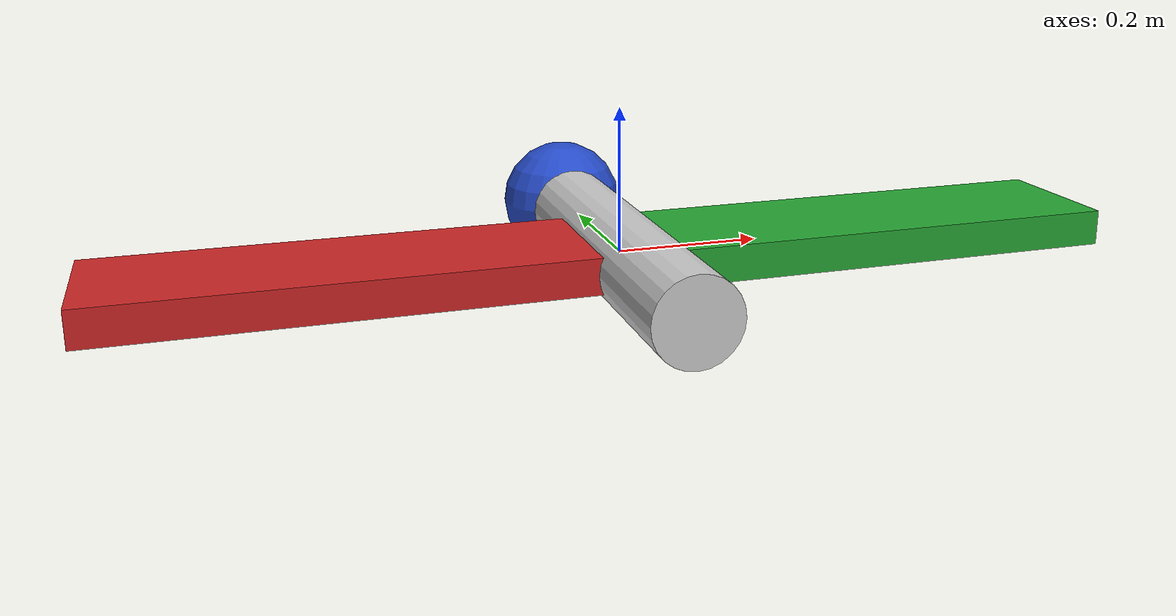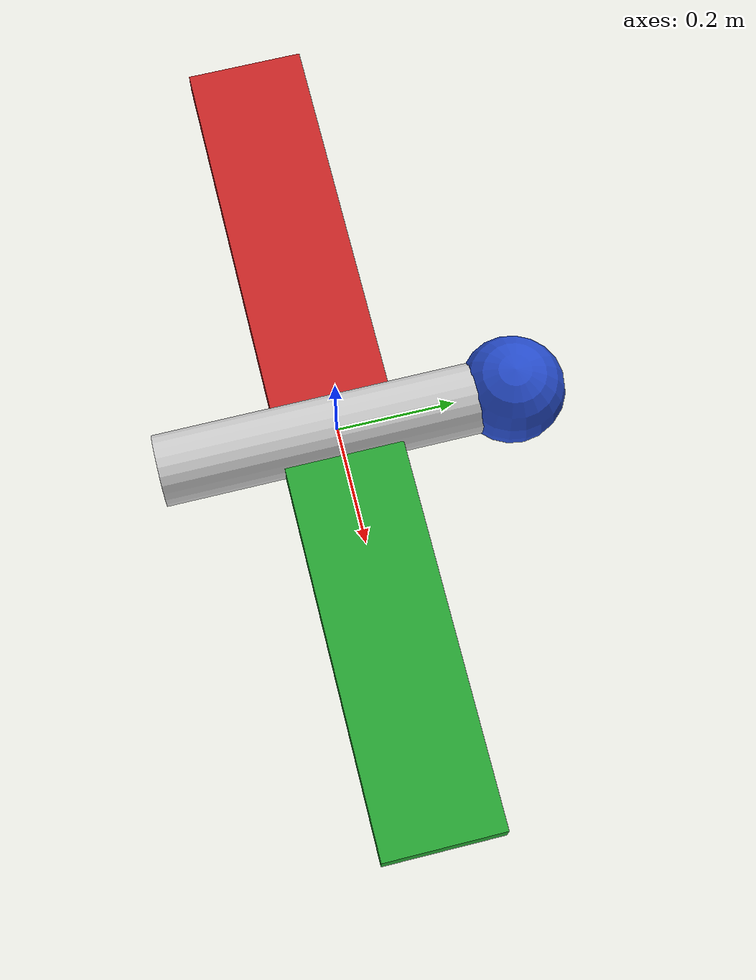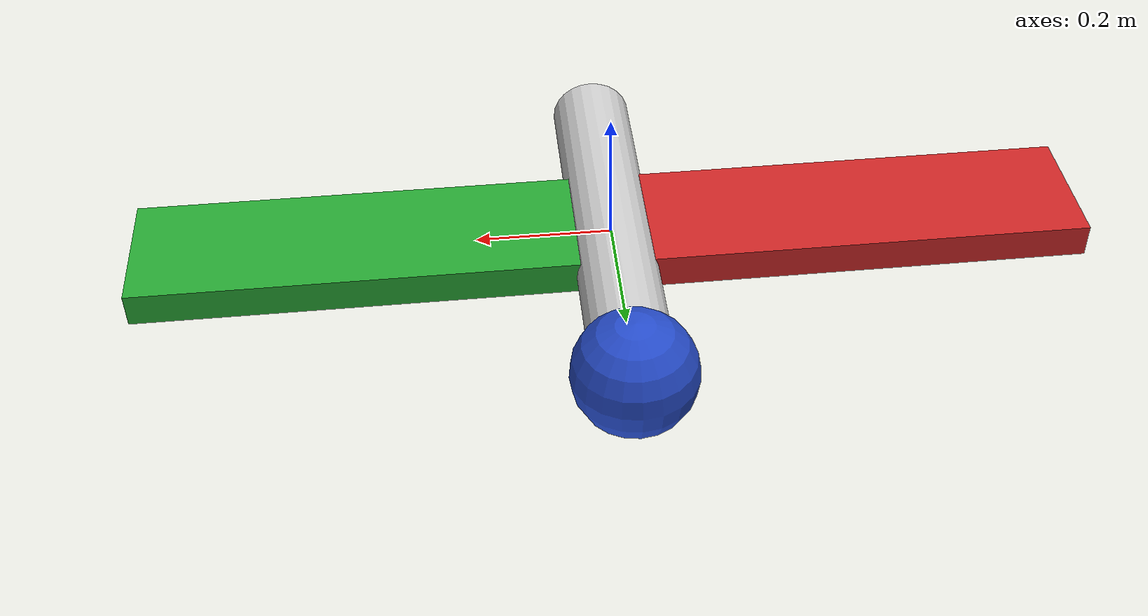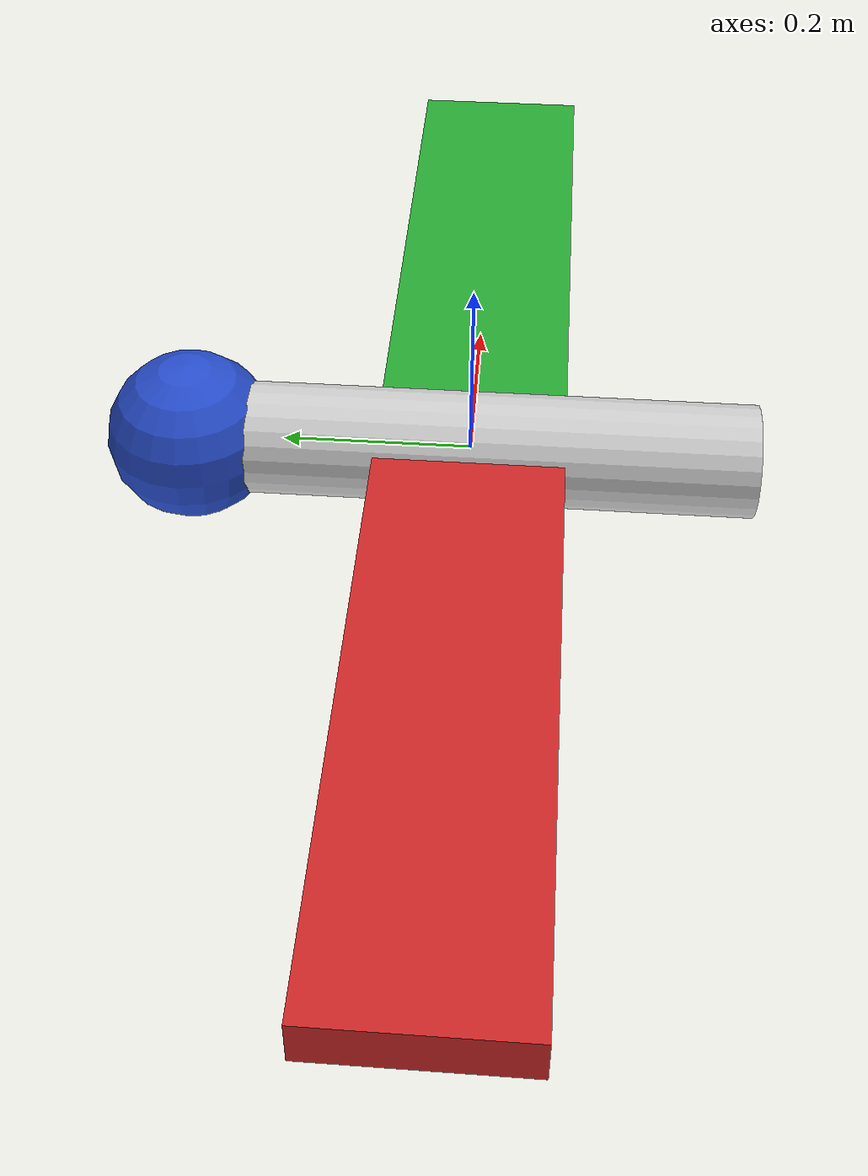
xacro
<?xml version="1.0" encoding="UTF-8"?>
<robot xmlns:xacro="http://wiki.ros.org/xacro" name="metafly">

  <!-- Use this if parameters are set from the launch file, otherwise delete -->
  <xacro:arg name="prefix" default="" />

  <xacro:include filename="$(find metafly_description)/urdf/materials.xacro" />
  <xacro:include filename="$(find metafly_description)/urdf/metafly_macro.xacro" />

  <!-- Load robot's macro with parameters -->
  <!-- set prefix if multiple robots are used -->
  <xacro:metafly prefix="$(arg prefix)"/>

</robot>

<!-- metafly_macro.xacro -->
<robot xmlns:xacro="http://wiki.ros.org/xacro">

  <xacro:macro name="metafly" params="prefix">

    <!-- Make everything larger and easier to see -->
    <xacro:property name="body_length" value="0.6" />
    <xacro:property name="body_radius" value="0.06" />
    <xacro:property name="wing_length" value="0.5" />
    <xacro:property name="wing_width" value="0.25" />
    <xacro:property name="wing_thickness" value="0.05" />

    <!-- Base/body -->
    <link name="${prefix}base_link">
      <visual>
        <origin xyz="0 0 0" rpy="${radians(90)} 0 0" />
        <geometry>
          <cylinder length="${body_length}" radius="${body_radius}" />
        </geometry>
        <material name="light_grey"/>
      </visual>

      <visual>
        <origin xyz="0 ${body_length/2} 0" rpy="0 0 0" />
        <geometry>
          <sphere radius="0.09"/>
        </geometry>
        <material name="blue"/>
      </visual>
    </link>

    <!-- Left wing -->
    <link name="${prefix}wing1">
      <visual>
        <origin xyz="-0.35 0 0" rpy="0 0 0" />
        <geometry>
          <box size="0.7 0.2 0.05" />
        </geometry>
        <material name="red"/>
      </visual>
    </link>

    <!-- Right wing -->
    <link name="${prefix}wing2">
      <visual>
        <origin xyz="0.35 0 0" rpy="0 0 0" />
        <geometry>
          <box size="0.7 0.2 0.05" />
        </geometry>
        <material name="green"/>
      </visual>
    </link>

    <!-- Joints -->
    <joint name="${prefix}joint1" type="revolute">
      <origin xyz="0 0 0" rpy="0 0 0" />
      <parent link="${prefix}base_link" />
      <child link="${prefix}wing1" />
      <axis xyz="0 1 0" />
      <limit effort="1" lower="${radians(-90)}" upper="${radians(90)}" velocity="1" />
    </joint>

    <joint name="${prefix}joint2" type="revolute">
      <origin xyz="0 0 0" rpy="0 0 0" />
      <parent link="${prefix}base_link" />
      <child link="${prefix}wing2" />
      <axis xyz="0 1 0" />
      <limit effort="1" lower="${radians(-90)}" upper="${radians(90)}" velocity="1" />
    </joint>

  </xacro:macro>
</robot>
